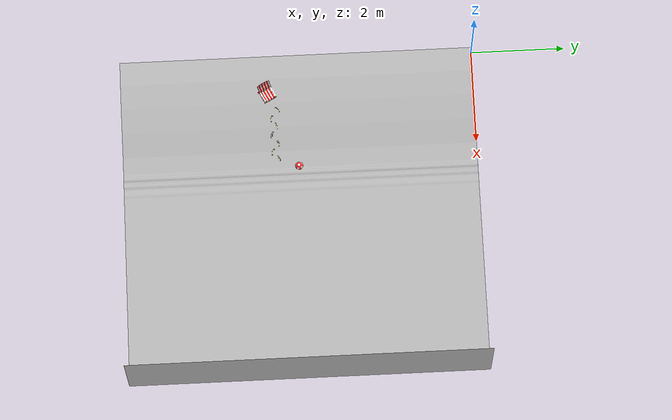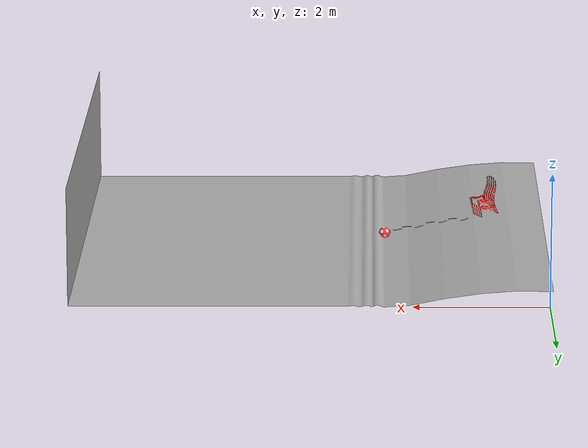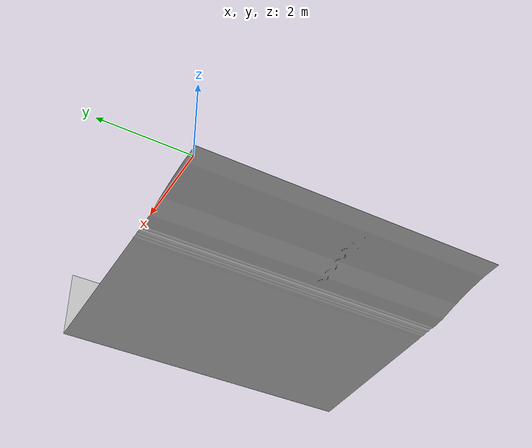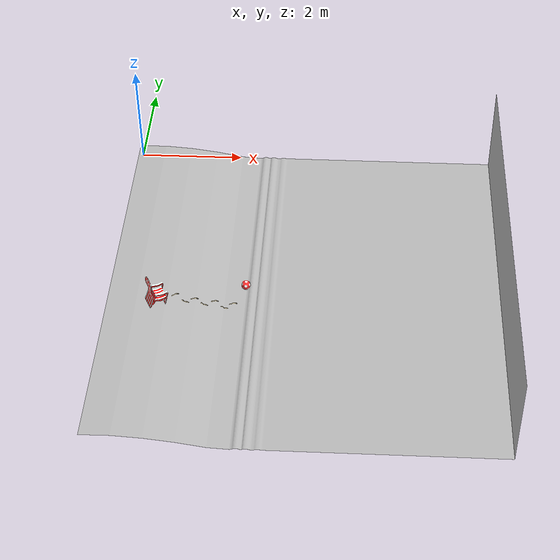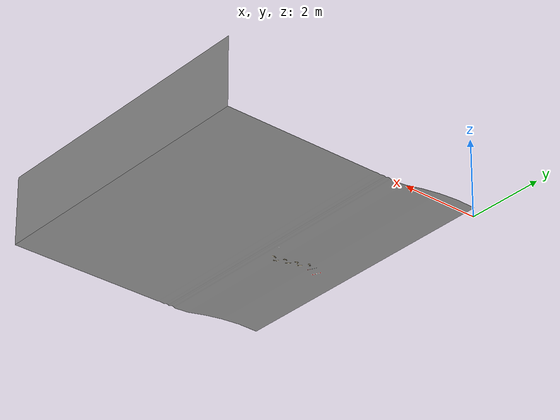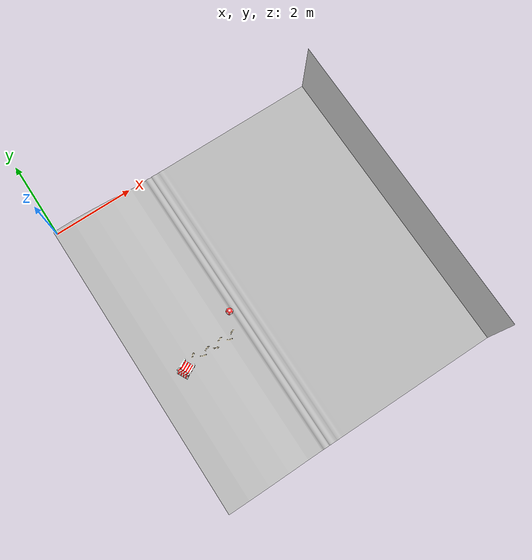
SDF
<?xml version="1.0" ?>
<sdf version="1.6">
  <model name="ocean">
    <static>true</static>
    <link name="link">
      <collision name="collision">
        <geometry>
          <mesh>
            <uri>model://ocean/meshes/model.dae</uri>
	    <scale>0.05 0.05 0.05</scale>
          </mesh>
        </geometry>
      </collision>
      <visual name="visual">
        <geometry>
          <mesh>
            <uri>model://ocean/meshes/model.dae</uri>
	    <scale>0.05 0.05 0.05</scale>
          </mesh>
        </geometry>
      </visual>
    </link>
  </model>
</sdf>
